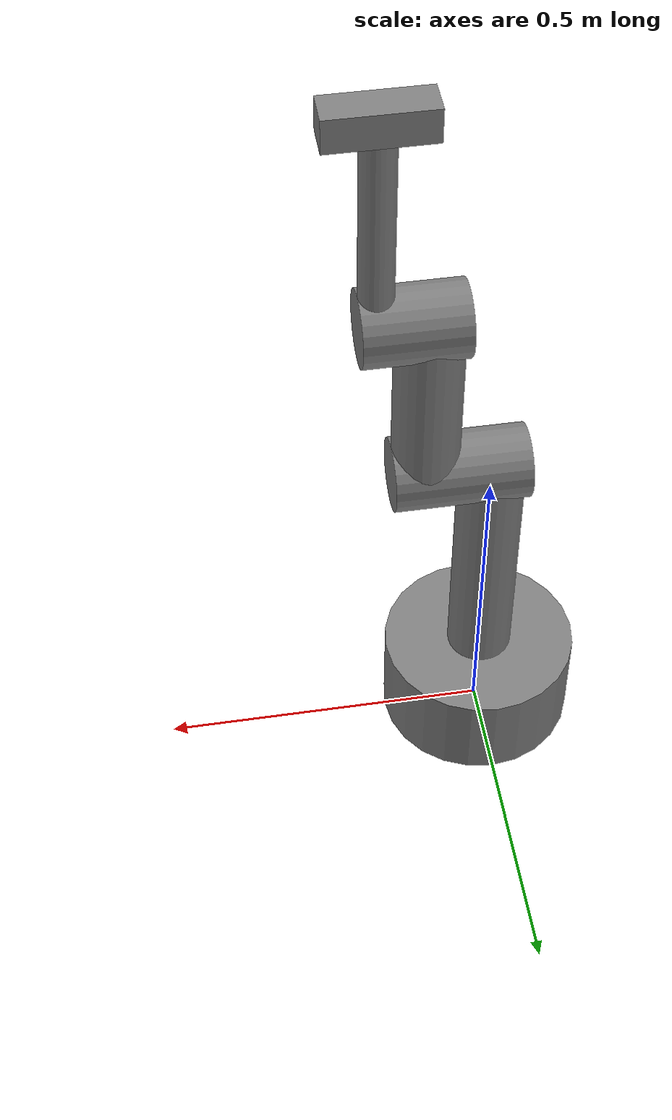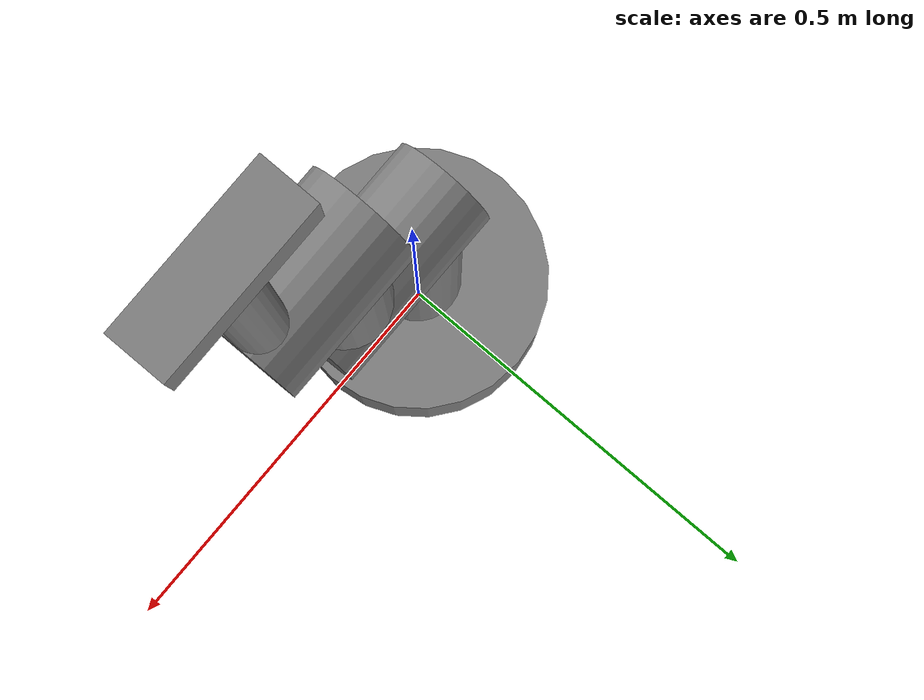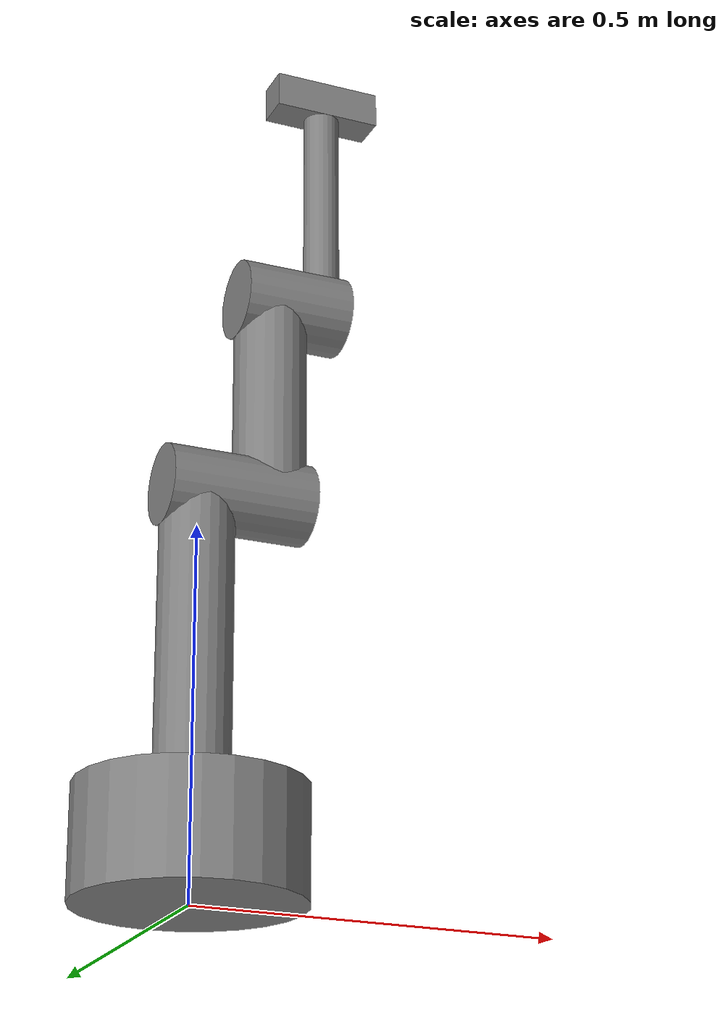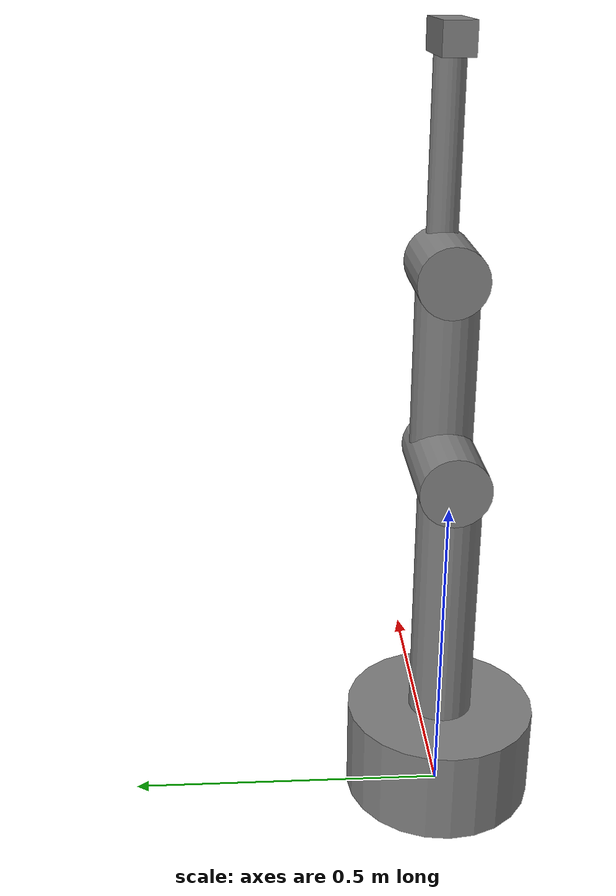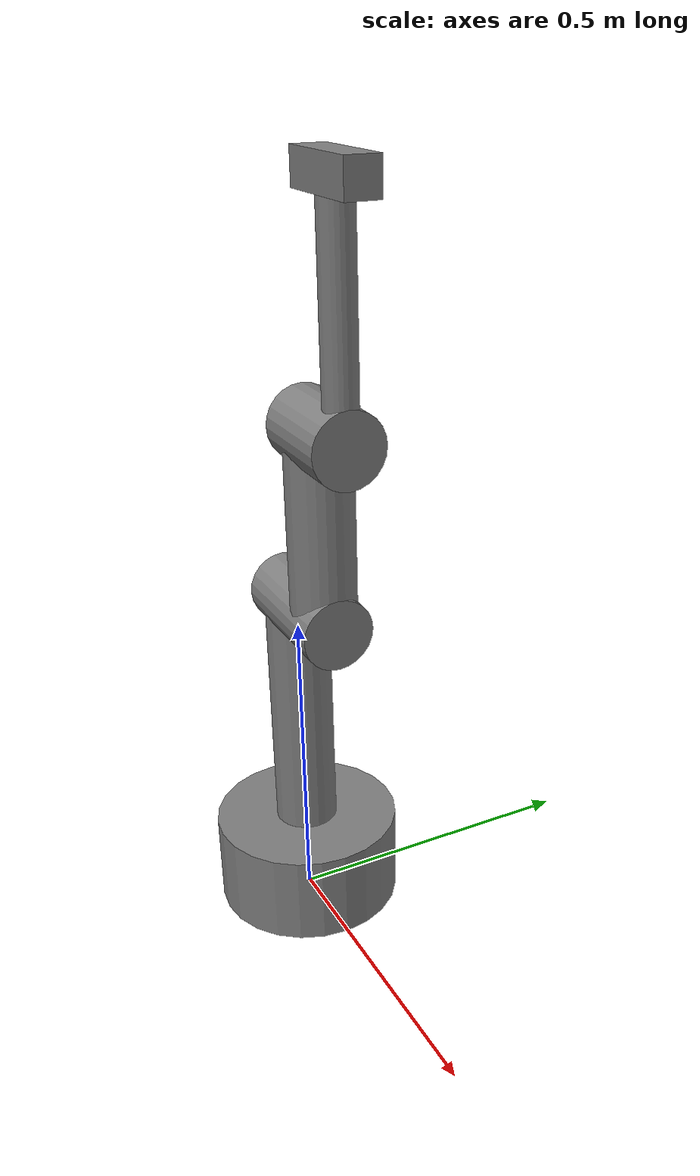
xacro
<?xml version="1.0"?>
<robot xmlns:xacro="http://www.ros.org/wiki/xacro">

<xacro:include filename="inertial.xacro"/>

<!--    En este archivo se crean y ensamblan todas las piezas con sus propiedades inerciales
        y de colision-->

<!-- Se ancla la base del brazo al mundo -->
    <link name="world"/>
    <joint name="world_joint" type="fixed">
        <origin rpy="0.0 0.0 0.0" xyz="0.0 0.0 0.0"/>
        <parent link="world"/>
        <child link="base_link"/>
    </joint>

    <!-- Se diseña la base del brazo y se une con la parte siguiente -->
    <link name="base_link">
        <xacro:inertial_block mass="${base_mass}" length="${base_length}" radius="${base_radius}"/>
        <xacro:visual_block radius="${base_radius}" length="${base_length}" color="0.5 0.5 0.5 1"/>
        <xacro:collision_block radius="${base_radius}" length="${base_length}"/>
    </link>

    <joint name="joint_1" type="revolute">
        <origin xyz="0.0 0.0 ${base_length}" rpy="0.0 0.0 0.0" />
        <parent link="base_link"/>
        <child link="link_1"/>
        <axis xyz="0.0 0.0 1"/>
        <limit effort="300.0" lower="0.0" upper="6.28318" velocity="1.0"/>
    </joint>

    <!-- Link 1 -->
    <link name="link_1">
        <xacro:inertial_block mass="${link1_mass}" length="${link1_length}" radius="${link1_radius}"/>
        <xacro:visual_block radius="${link1_radius}" length="${link1_length}" color="0.5 0.5 0.5 1"/>
        <xacro:collision_block radius="${link1_radius}" length="${link1_length}"/>
    </link>

    <!-- Codo -->
    <link name="link_1_endlink">
        <xacro:inertial_block mass="${link1_mass/3.0}" length="${2*link1_radius+2*link2_radius}" radius="${link1_radius}"/>
        <visual>
            <origin xyz="0.0 0.0 ${(2*link1_radius+2*link2_radius)/2.0}" rpy="0.0 0.0 0.0"/>
            <geometry>
                <cylinder length="${(2*link1_radius+2*link2_radius)}" radius="${link1_radius*1.1}"/>
            </geometry>
            <material name="grey">
                <color rgba="0.5 0.5 0.5 1"/>
            </material>
        </visual>
        <collision>
            <origin xyz="0.0 0.0 ${(2*link1_radius+2*link2_radius)/2.0}" rpy="0.0 0.0 0.0"/>
            <geometry>
                <cylinder length="${(2*link1_radius+2*link2_radius)}" radius="${link1_radius*1.1}"/>
            </geometry>
        </collision>
    </link>

    <!-- Articulacion codo -->
    <joint name="link_1_endjoint" type="fixed">
        <origin xyz="${-link1_radius} 0.0 ${link1_length}" rpy="0.0 ${M_PI/2.0} 0.0"/>
        <parent link="link_1"/>
        <child link="link_1_endlink"/>
    </joint>

    <joint name="joint_2" type="revolute">
        <origin xyz="${link1_radius + link2_radius} 0.0 ${link1_length}" rpy="0.0 0.0 0.0"/>
        <parent link="link_1"/>
        <child link="link_2"/>
        <axis xyz="1.0 0.0 0.0"/>
        <limit effort="300.0" lower="0.0" upper="${M_PI}" velocity="1.0"/>
    </joint>

    <!-- Link 2 -->
    <link name="link_2">
        <xacro:inertial_block mass="${link2_mass}" length="${link2_length}" radius="${link2_radius}"/>
        <xacro:visual_block radius="${link2_radius}" length="${link2_length}" color="0.5 0.5 0.5 1"/>
        <xacro:collision_block radius="${link2_radius}" length="${link2_length}"/>
    </link>

    <!-- Link 2 end link -->
    <link name="link_2_endlink">
        <xacro:inertial_block mass="${link3_mass/3.0}" length="${2*link2_radius+2*link3_radius}" radius="${link2_radius}"/>
        <visual>
            <origin xyz="0.0 0.0 ${(2*link2_radius+2*link3_radius)/2.0}" rpy="0.0 0.0 0.0"/>
            <geometry>
                <cylinder radius="${link2_radius*1.1}" length="${2*link2_radius+2*link3_radius}"/>
            </geometry>
            <material name="grey">
                <color rgba="0.5 0.5 0.5 1"/>
            </material>
        </visual>
        <collision>
            <origin xyz="0.0 0.0 ${(2*link2_radius+2*link3_radius)/2.0}" rpy="0.0 0.0 0.0"/>
            <geometry>
                <cylinder radius="${link2_radius*1.1}" length="${2*link2_radius+2*link3_radius}"/>
            </geometry>
        </collision>
    </link>

    <joint name="link_2_endjoint" type="fixed">
        <origin xyz="${-link2_radius} 0.0 ${link2_length - 0.01}" rpy="0.0 ${M_PI/2.0} 0.0"/>
        <parent link="link_2"/>
        <child link="link_2_endlink"/>
    </joint>

    <joint name="joint_3" type="revolute">
        <origin xyz="${link2_radius + link3_radius} 0.0 ${link2_length}" rpy="0.0 0.0 0.0"/>
        <parent link="link_2"/>
        <child link="link_3"/>
        <axis xyz="1.0 0.0 0.0"/>
        <limit lower="0.0" upper="${M_PI * 2}" effort="300.0" velocity="1.0"/>
    </joint>

    <!-- Link 3 -->
    <link name="link_3">
        <xacro:inertial_block mass="${link3_mass}" length="${link3_length}" radius="${link3_radius}"/>
        <xacro:visual_block radius="${link3_radius}" length="${link3_length}" color="0.5 0.5 0.5 1"/>
        <xacro:collision_block radius="${link3_radius}" length="${link3_length}"/>
    </link>

    <!-- Mano efector final -->
    <joint name="joint_4" type="fixed">
        <origin xyz="0.0 0.0 ${link3_length}" rpy="0.0 0.0 0.0"/>
        <parent link="link_3"/>
        <child link="link_4"/>
        <axis xyz="0.0 0.0 1.0"/>
    </joint>

    <!-- Link 4 -->
    <link name="link_4">
        <xacro:inertial_block mass="${link4_mass}" length="${link4_length}" radius="${link4_radius}"/>
        <visual>
            <origin xyz="0.0 0.0 ${link4_radius}" rpy="0.0 ${M_PI/2.0} 0.0"/>
            <geometry>
                <box size="${link4_radius*2} ${link4_radius*2} ${link4_length}"/>
            </geometry>
            <material name="grey">
                <color rgba="0.5 0.5 0.5 1"/>
            </material>
        </visual>
        <collision>
            <origin xyz="0.0 0.0 ${link4_radius}" rpy="0.0 ${M_PI/2.0} 0.0"/>
            <geometry>
                <box size="${link4_radius*2} ${link4_radius*2} ${link4_length}"/>
            </geometry>
        </collision>
    </link>
</robot>

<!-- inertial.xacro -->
<robot xmlns:xacro="http://www.ros.org/wiki/xacro">

<!--En este archivo se declaran las propiedades inerciales de los componentes
    para la simulación, también se declaran las dimensiones de las piezas -->

    <!-- Definiciones de dimensiones y otros parámetros -->
    <xacro:property name="M_PI" value="3.14159"/>
    <xacro:property name="base_mass" value="20"/>
    <xacro:property name="base_radius" value="0.15"/>
    <xacro:property name="base_length" value="0.15"/>
    <xacro:property name="link1_mass" value="5"/>
    <xacro:property name="link1_radius" value="0.05"/>
    <xacro:property name="link1_length" value="0.4"/>

    <xacro:property name="link2_mass" value="2"/>
    <xacro:property name="link2_radius" value="0.05"/>
    <xacro:property name="link2_length" value="0.3"/>

    <xacro:property name="link3_mass" value="3"/>
    <xacro:property name="link3_radius" value="0.025"/>
    <xacro:property name="link3_length" value="0.3"/>

    <xacro:property name="link4_mass" value="1"/>
    <xacro:property name="link4_radius" value="0.025"/>
    <xacro:property name="link4_length" value="0.15"/>

    <!-- Macro para la definición de la inercia de las piezas -->
    <xacro:macro name="inertial_block" params="mass length radius">
        <inertial>
            <origin xyz="0 0 ${length/2}" rpy="0 0 0"/>
            <mass value="${mass}"/>
            <inertia
                ixx="${mass / 12.0 * (2*radius*2*radius + length*length)}" ixy="0.0" ixz="0.0"
                iyy="${mass / 12.0 * (length*length + 2*radius*2*radius)}" iyz="0.0"
                izz="${mass / 12.0 * (2*radius*2*radius + 2*radius*2*radius)}" />
        </inertial>
    </xacro:macro>

    <!-- Macro para definir la visualización del modelo, en otras palabras, cómo se verán las piezas en el simulador -->
    <xacro:macro name="visual_block" params="radius length color">
        <visual>
            <origin xyz="0 0 ${length/2}" rpy="0 0 0"/>
            <geometry>
                <cylinder radius="${radius}" length="${length}"/>
            </geometry>
            <material name="grey">
                <color rgba="${color}"/>
            </material>
        </visual>
    </xacro:macro>

    <!-- Macro para definir las propiedades de colisión de las piezas -->
    <xacro:macro name="collision_block" params="radius length">
        <collision>
            <origin xyz="0 0 ${length/2}" rpy="0 0 0"/>
            <geometry>
                <cylinder radius="${radius}" length="${length}"/>
            </geometry>
        </collision>
    </xacro:macro>
</robot>
